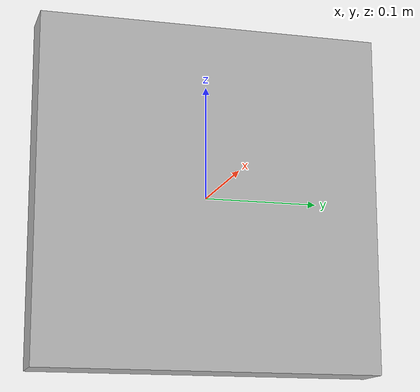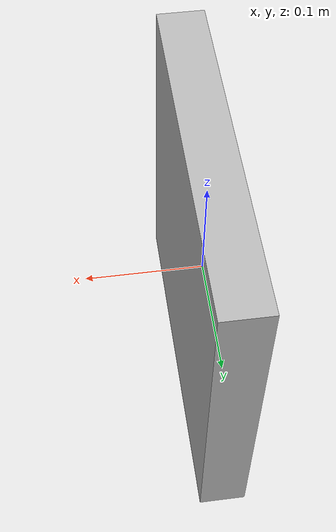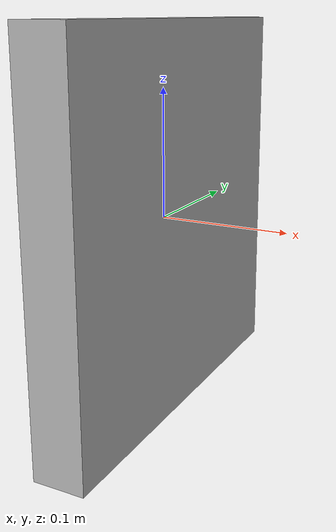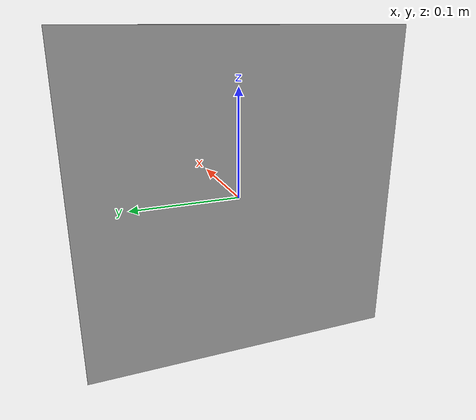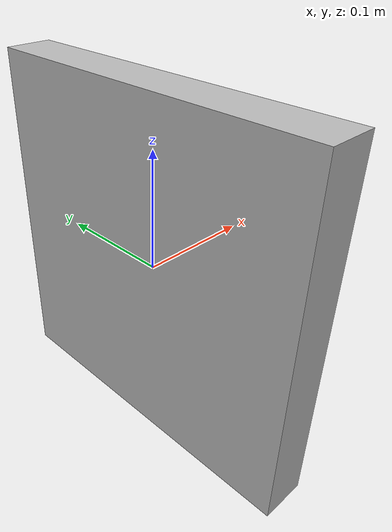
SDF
<?xml version="1.0"?>
<sdf version="1.4">
  <model name="safety_helmet_1">
    <pose>0 0 0 0 0 0</pose>
    <static>true</static>
    <link name="safety_helmet_1_link">
      <visual name="safety_helmet_1_visual">
        <pose>0 0 0 0 0 0</pose>
        <geometry>
          <mesh>
            <uri>model://safety_helmet_1/meshes/safety_helmet_1.dae</uri>
          </mesh>
        </geometry>
      </visual>
    </link>
  </model>
</sdf>
